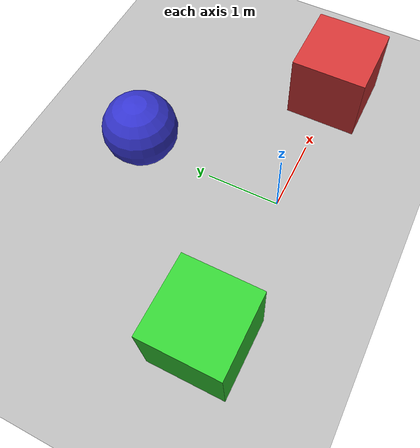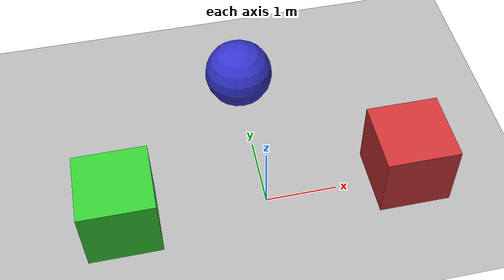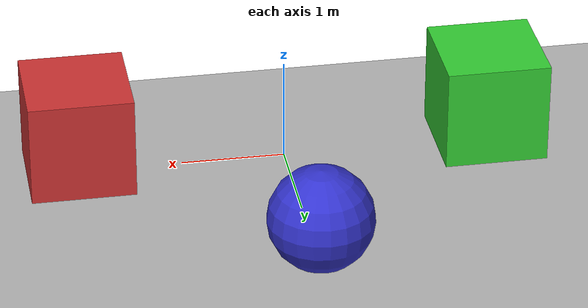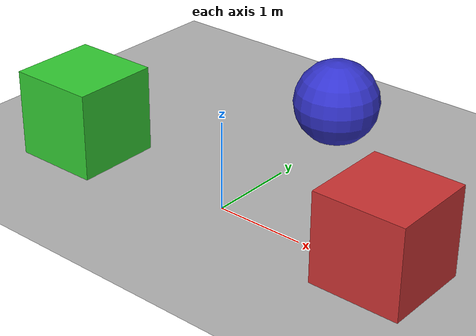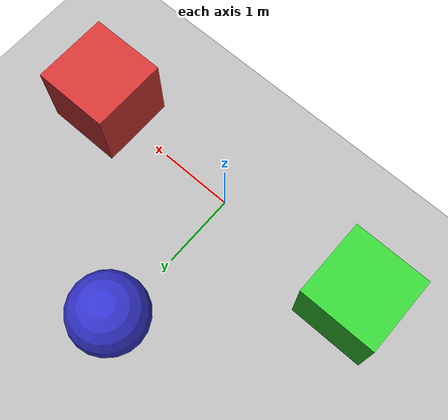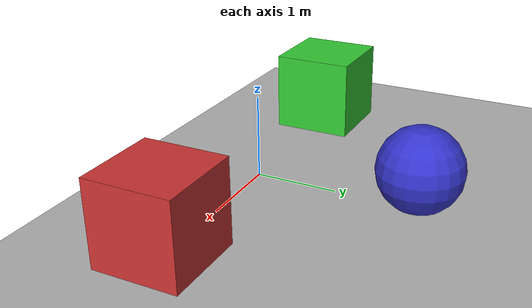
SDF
<?xml version="1.0" ?>
<sdf version="1.6">
  <world name="obstacles_world">
    <physics name="default_physics" default="true" type="ode">
      <max_step_size>0.001</max_step_size>
      <real_time_factor>1.0</real_time_factor>
    </physics>

    <light name="sun" type="directional">
      <cast_shadows>true</cast_shadows>
      <pose>0 0 10 0 0 0</pose>
      <diffuse>0.8 0.8 0.8 1</diffuse>
      <specular>0.2 0.2 0.2 1</specular>
      <direction>-0.5 0.1 -0.9</direction>
    </light>

    <model name="ground_plane">
      <static>true</static>
      <link name="link">
        <collision name="collision">
          <geometry><plane><normal>0 0 1</normal></plane></geometry>
        </collision>
        <visual name="visual">
          <geometry><plane><normal>0 0 1</normal></plane></geometry>
          <material>
            <ambient>0.7 0.7 0.7 1</ambient>
            <diffuse>0.7 0.7 0.7 1</diffuse>
          </material>
        </visual>
      </link>
    </model>

    <!-- Hộp số 1 -->
    <model name="box_1">
      <pose>2 0 0.5 0 0 0</pose>
      <link name="link">
        <inertial><mass>1.0</mass><inertia><ixx>0.1</ixx><iyy>0.1</iyy><izz>0.1</izz></inertia></inertial>
        <collision name="collision"><geometry><box><size>1 1 1</size></box></geometry></collision>
        <visual name="visual"><geometry><box><size>1 1 1</size></box></geometry>
          <material><ambient>0.8 0.2 0.2 1</ambient><diffuse>0.8 0.2 0.2 1</diffuse></material>
        </visual>
      </link>
    </model>

    <!-- Hộp số 2 -->
    <model name="box_2">
      <pose>-2 0 0.5 0 0 0</pose>
      <link name="link">
        <inertial><mass>1.0</mass><inertia><ixx>0.1</ixx><iyy>0.1</iyy><izz>0.1</izz></inertia></inertial>
        <collision name="collision"><geometry><box><size>1 1 1</size></box></geometry></collision>
        <visual name="visual"><geometry><box><size>1 1 1</size></box></geometry>
          <material><ambient>0.2 0.8 0.2 1</ambient><diffuse>0.2 0.8 0.2 1</diffuse></material>
        </visual>
      </link>
    </model>

    <!-- Cầu -->
    <model name="sphere_1">
      <pose>0 2 0.5 0 0 0</pose>
      <link name="link">
        <inertial><mass>0.5</mass><inertia><ixx>0.1</ixx><iyy>0.1</iyy><izz>0.1</izz></inertia></inertial>
        <collision name="collision"><geometry><sphere><radius>0.5</radius></sphere></geometry></collision>
        <visual name="visual"><geometry><sphere><radius>0.5</radius></sphere></geometry>
          <material><ambient>0.2 0.2 0.8 1</ambient><diffuse>0.2 0.2 0.8 1</diffuse></material>
        </visual>
      </link>
    </model>

    <scene>
      <ambient>0.7 0.7 0.7 1</ambient>
      <background>0.8 0.9 1.0 1</background>
    </scene>
  </world>
</sdf>
